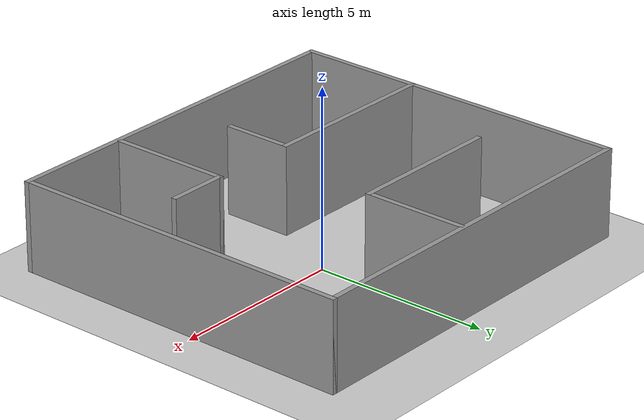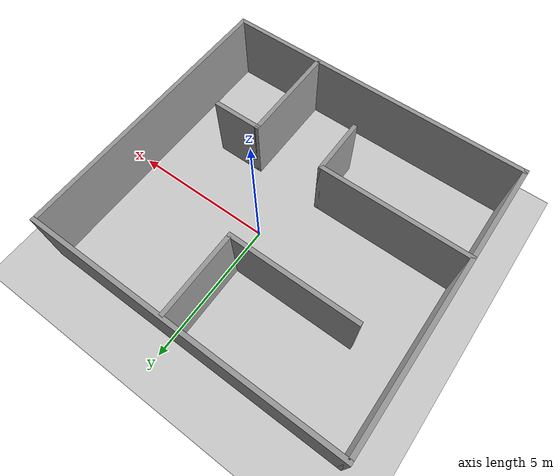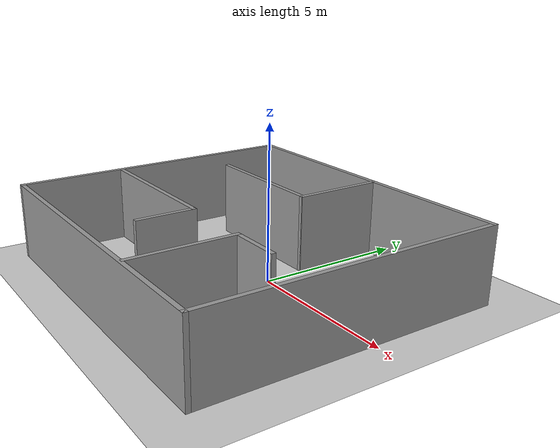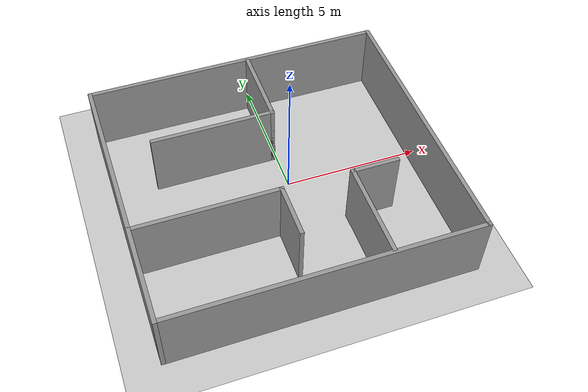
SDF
<sdf version="1.7">
 <world name="default">
  <light name="sun" type="directional">
   <pose>0 0 10 0 -0 0</pose>
   <diffuse>0.8 0.8 0.8 1</diffuse>
   <specular>0.2 0.2 0.2 1</specular>
   <attenuation>
    <range>1000</range>
    <constant>0.9</constant>
    <linear>0.01</linear>
    <quadratic>0.001</quadratic>
   </attenuation>
   <direction>-0.5 0.1 -0.9</direction>
   <spot><inner_angle>0</inner_angle><outer_angle>0</outer_angle><falloff>0</falloff></spot>
  </light>
  <model name="ground_plane">
   <static>1</static>
   <link name="link">
    <collision name="collision">
     <geometry><plane><normal>0 0 1</normal><size>100 100</size></plane></geometry>
     <surface><friction><ode><mu>100</mu><mu2>50</mu2></ode></friction></surface>
    </collision>
    <visual name="visual">
     <cast_shadows>0</cast_shadows>
     <geometry><plane><normal>0 0 1</normal><size>100 100</size></plane></geometry>
     <material>
      <script><uri>file://media/materials/scripts/gazebo.material</uri><name>Gazebo/Grey</name></script>
     </material>
    </visual>
   </link>
  </model>
  <gravity>0 0 -9.8</gravity>
  <magnetic_field>6e-06 2.3e-05 -4.2e-05</magnetic_field>
  <atmosphere type="adiabatic"/>
  <physics type="ode">
   <max_step_size>0.001</max_step_size>
   <real_time_factor>1</real_time_factor>
   <real_time_update_rate>1000</real_time_update_rate>
  </physics>
  <scene><ambient>0.4 0.4 0.4 1</ambient><background>0.7 0.7 0.7 1</background><shadows>1</shadows></scene>
  <audio><device>default</device></audio>
  <spherical_coordinates>
   <surface_model>EARTH_WGS84</surface_model>
   <latitude_deg>0</latitude_deg>
   <longitude_deg>0</longitude_deg>
   <elevation>0</elevation>
   <heading_deg>0</heading_deg>
  </spherical_coordinates>
  <model name="room">
   <pose>-0.663846 -0.595809 0 0 -0 0</pose>
   <link name="Wall_0">
    <collision name="Wall_0_Collision">
     <geometry><box><size>11 0.15 2.5</size></box></geometry>
     <pose>0 0 1.25 0 -0 0</pose>
    </collision>
    <visual name="Wall_0_Visual">
     <pose>0 0 1.25 0 -0 0</pose>
     <geometry><box><size>11 0.15 2.5</size></box></geometry>
     <material>
      <script><uri>file://media/materials/scripts/gazebo.material</uri><name>Gazebo/Grey</name></script>
      <ambient>1 1 1 1</ambient>
     </material>
     <meta><layer>0</layer></meta>
    </visual>
    <pose>0 4.925 0 0 -0 0</pose>
   </link>
   <link name="Wall_1">
    <collision name="Wall_1_Collision">
     <geometry><box><size>10 0.15 2.5</size></box></geometry>
     <pose>0 0 1.25 0 -0 0</pose>
    </collision>
    <visual name="Wall_1_Visual">
     <pose>0 0 1.25 0 -0 0</pose>
     <geometry><box><size>10 0.15 2.5</size></box></geometry>
     <material>
      <script><uri>file://media/materials/scripts/gazebo.material</uri><name>Gazebo/Grey</name></script>
      <ambient>1 1 1 1</ambient>
     </material>
     <meta><layer>0</layer></meta>
    </visual>
    <pose>5.425 -0 0 0 -0 -1.5708</pose>
   </link>
   <link name="Wall_11">
    <collision name="Wall_11_Collision">
     <geometry><box><size>3.5 0.15 2.5</size></box></geometry>
     <pose>0 0 1.25 0 -0 0</pose>
    </collision>
    <visual name="Wall_11_Visual">
     <pose>0 0 1.25 0 -0 0</pose>
     <geometry><box><size>3.5 0.15 2.5</size></box></geometry>
     <material>
      <script><uri>file://media/materials/scripts/gazebo.material</uri><name>Gazebo/Grey</name></script>
      <ambient>1 1 1 1</ambient>
     </material>
     <meta><layer>0</layer></meta>
    </visual>
    <pose>2.18053 -3.16112 0 0 -0 1.5708</pose>
   </link>
   <link name="Wall_12">
    <collision name="Wall_12_Collision">
     <geometry><box><size>1.75 0.15 2.5</size></box></geometry>
     <pose>0 0 1.25 0 -0 0</pose>
    </collision>
    <visual name="Wall_12_Visual">
     <pose>0 0 1.25 0 -0 0</pose>
     <geometry><box><size>1.75 0.15 2.5</size></box></geometry>
     <material>
      <script><uri>file://media/materials/scripts/gazebo.material</uri><name>Gazebo/Grey</name></script>
      <ambient>1 1 1 1</ambient>
     </material>
     <meta><layer>0</layer></meta>
    </visual>
    <pose>2.98053 -1.48612 0 0 -0 0</pose>
   </link>
   <link name="Wall_2">
    <collision name="Wall_2_Collision">
     <geometry><box><size>11 0.15 2.5</size></box></geometry>
     <pose>0 0 1.25 0 -0 0</pose>
    </collision>
    <visual name="Wall_2_Visual">
     <pose>0 0 1.25 0 -0 0</pose>
     <geometry><box><size>11 0.15 2.5</size></box></geometry>
     <material>
      <script><uri>file://media/materials/scripts/gazebo.material</uri><name>Gazebo/Grey</name></script>
      <ambient>1 1 1 1</ambient>
     </material>
     <meta><layer>0</layer></meta>
    </visual>
    <pose>0 -4.925 0 0 -0 3.14159</pose>
   </link>
   <link name="Wall_3">
    <collision name="Wall_3_Collision">
     <geometry><box><size>10 0.15 2.5</size></box></geometry>
     <pose>0 0 1.25 0 -0 0</pose>
    </collision>
    <visual name="Wall_3_Visual">
     <pose>0 0 1.25 0 -0 0</pose>
     <geometry><box><size>10 0.15 2.5</size></box></geometry>
     <material>
      <script><uri>file://media/materials/scripts/gazebo.material</uri><name>Gazebo/Grey</name></script>
      <ambient>1 1 1 1</ambient>
     </material>
     <meta><layer>0</layer></meta>
    </visual>
    <pose>-5.425 -0 0 0 -0 1.5708</pose>
   </link>
   <link name="Wall_5">
    <collision name="Wall_5_Collision">
     <geometry><box><size>4.5 0.15 2.5</size></box></geometry>
     <pose>0 0 1.25 0 -0 0</pose>
    </collision>
    <visual name="Wall_5_Visual">
     <pose>0 0 1.25 0 -0 0</pose>
     <geometry><box><size>4.5 0.15 2.5</size></box></geometry>
     <material>
      <script><uri>file://media/materials/scripts/gazebo.material</uri><name>Gazebo/Grey</name></script>
      <ambient>1 1 1 1</ambient>
     </material>
     <meta><layer>0</layer></meta>
    </visual>
    <pose>-1.65843 1.98741 0 0 -0 0</pose>
   </link>
   <link name="Wall_6">
    <collision name="Wall_6_Collision">
     <geometry><box><size>3 0.15 2.5</size></box></geometry>
     <pose>0 0 1.25 0 -0 0</pose>
    </collision>
    <visual name="Wall_6_Visual">
     <pose>0 0 1.25 0 -0 0</pose>
     <geometry><box><size>3 0.15 2.5</size></box></geometry>
     <material>
      <script><uri>file://media/materials/scripts/gazebo.material</uri><name>Gazebo/Grey</name></script>
      <ambient>1 1 1 1</ambient>
     </material>
     <meta><layer>0</layer></meta>
    </visual>
    <pose>0.516575 3.41241 0 0 -0 1.5708</pose>
   </link>
   <link name="Wall_8">
    <collision name="Wall_8_Collision">
     <geometry><box><size>5.25 0.15 2.5</size></box></geometry>
     <pose>0 0 1.25 0 -0 0</pose>
    </collision>
    <visual name="Wall_8_Visual">
     <pose>0 0 1.25 0 -0 0</pose>
     <geometry><box><size>5.25 0.15 2.5</size></box></geometry>
     <material>
      <script><uri>file://media/materials/scripts/gazebo.material</uri><name>Gazebo/Grey</name></script>
      <ambient>1 1 1 1</ambient>
     </material>
     <meta><layer>0</layer></meta>
    </visual>
    <pose>-2.85631 -1.43592 0 0 -0 0</pose>
   </link>
   <link name="Wall_9">
    <collision name="Wall_9_Collision">
     <geometry><box><size>2 0.15 2.5</size></box></geometry>
     <pose>0 0 1.25 0 -0 0</pose>
    </collision>
    <visual name="Wall_9_Visual">
     <pose>0 0 1.25 0 -0 0</pose>
     <geometry><box><size>2 0.15 2.5</size></box></geometry>
     <material>
      <script><uri>file://media/materials/scripts/gazebo.material</uri><name>Gazebo/Grey</name></script>
      <ambient>1 1 1 1</ambient>
     </material>
     <meta><layer>0</layer></meta>
    </visual>
    <pose>-0.306306 -2.36092 0 0 -0 -1.5708</pose>
   </link>
   <static>1</static>
  </model>
 </world>
</sdf>
